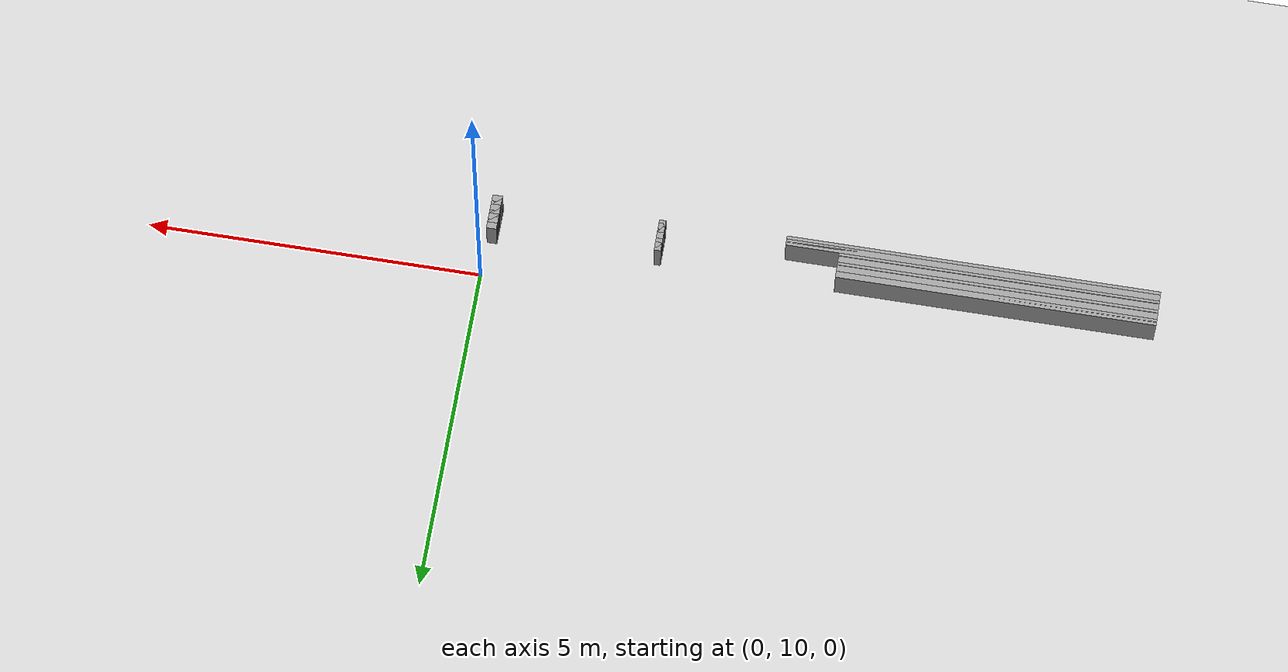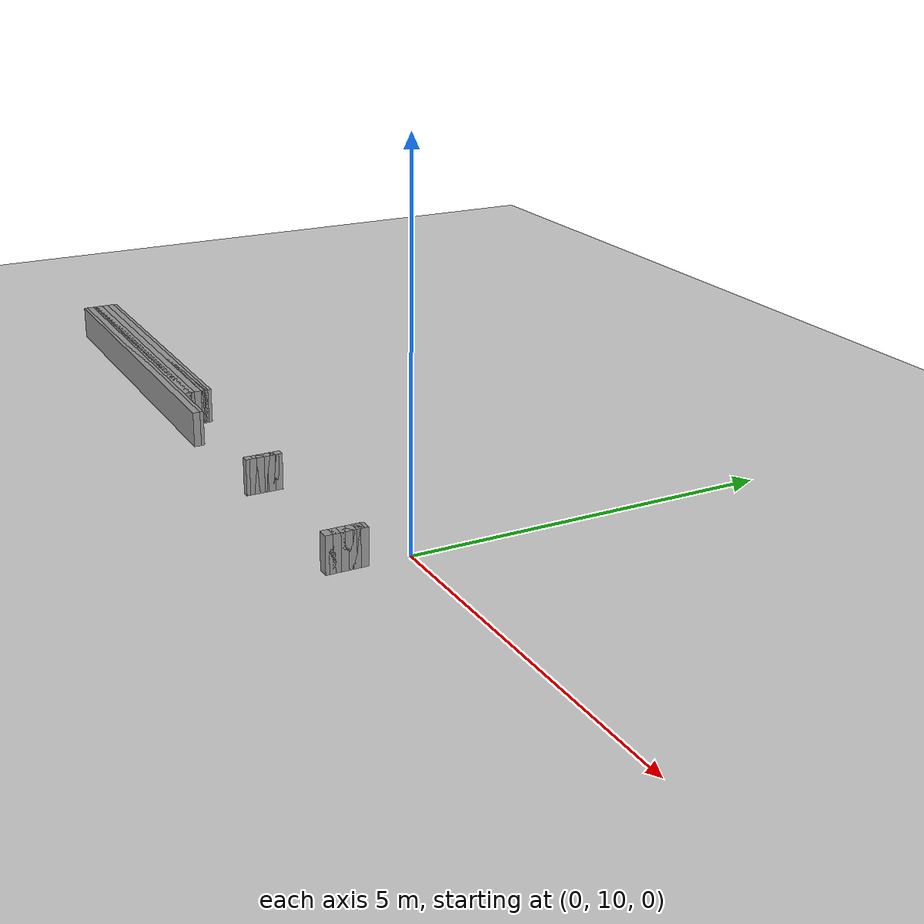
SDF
<sdf version="1.6">
 <world name="GridMap">
  <include><uri>model://sun</uri></include>
  <include><uri>model://ground_plane</uri></include>
  <model name="GridMap">
   <link name="Wall_(143.5,178.0)">
    <collision name="Wall_(143.5,178.0)_Collision">
     <geometry><box><size>5.550000000000001 0.1 0.5</size></box></geometry>
     <pose>-7.175000000000001 8.9 0.25 0 -0 0</pose>
    </collision>
    <inertial>
     <mass>0.5</mass>
     <pose>0 0.01 0 0 0 0</pose>
     <inertia><ixx>0.004</ixx><ixy>0.001</ixy><ixz>0</ixz><iyy>0.006</iyy><iyz>0</iyz><izz>0.007</izz></inertia>
    </inertial>
    <visual name="Wall_(143.5,178.0)_Visual">
     <geometry><box><size>5.550000000000001 0.1 0.5</size></box></geometry>
     <pose>-7.175000000000001 8.9 0.25 0 -0 0</pose>
     <material>
      <script><uri>file://media/materials/scripts/gazebo.material</uri><name>Gazebo/Grey</name></script>
      <ambient>1 1 1 1</ambient>
     </material>
     <meta><layer>0</layer></meta>
    </visual>
   </link>
   <link name="Wall_(1.5,179.0)">
    <collision name="Wall_(1.5,179.0)_Collision">
     <geometry><box><size>0.15000000000000002 0.1 0.5</size></box></geometry>
     <pose>-0.07500000000000001 8.950000000000001 0.25 0 -0 0</pose>
    </collision>
    <inertial>
     <mass>0.5</mass>
     <pose>0 0.01 0 0 0 0</pose>
     <inertia><ixx>0.004</ixx><ixy>0.001</ixy><ixz>0</ixz><iyy>0.006</iyy><iyz>0</iyz><izz>0.007</izz></inertia>
    </inertial>
    <visual name="Wall_(1.5,179.0)_Visual">
     <geometry><box><size>0.15000000000000002 0.1 0.5</size></box></geometry>
     <pose>-0.07500000000000001 8.950000000000001 0.25 0 -0 0</pose>
     <material>
      <script><uri>file://media/materials/scripts/gazebo.material</uri><name>Gazebo/Grey</name></script>
      <ambient>1 1 1 1</ambient>
     </material>
     <meta><layer>0</layer></meta>
    </visual>
   </link>
   <link name="Wall_(51.0,179.0)">
    <collision name="Wall_(51.0,179.0)_Collision">
     <geometry><box><size>0.1 0.1 0.5</size></box></geometry>
     <pose>-2.5500000000000003 8.950000000000001 0.25 0 -0 0</pose>
    </collision>
    <inertial>
     <mass>0.5</mass>
     <pose>0 0.01 0 0 0 0</pose>
     <inertia><ixx>0.004</ixx><ixy>0.001</ixy><ixz>0</ixz><iyy>0.006</iyy><iyz>0</iyz><izz>0.007</izz></inertia>
    </inertial>
    <visual name="Wall_(51.0,179.0)_Visual">
     <geometry><box><size>0.1 0.1 0.5</size></box></geometry>
     <pose>-2.5500000000000003 8.950000000000001 0.25 0 -0 0</pose>
     <material>
      <script><uri>file://media/materials/scripts/gazebo.material</uri><name>Gazebo/Grey</name></script>
      <ambient>1 1 1 1</ambient>
     </material>
     <meta><layer>0</layer></meta>
    </visual>
   </link>
   <link name="Wall_(143.5,179.0)">
    <collision name="Wall_(143.5,179.0)_Collision">
     <geometry><box><size>5.550000000000001 0.1 0.5</size></box></geometry>
     <pose>-7.175000000000001 8.950000000000001 0.25 0 -0 0</pose>
    </collision>
    <inertial>
     <mass>0.5</mass>
     <pose>0 0.01 0 0 0 0</pose>
     <inertia><ixx>0.004</ixx><ixy>0.001</ixy><ixz>0</ixz><iyy>0.006</iyy><iyz>0</iyz><izz>0.007</izz></inertia>
    </inertial>
    <visual name="Wall_(143.5,179.0)_Visual">
     <geometry><box><size>5.550000000000001 0.1 0.5</size></box></geometry>
     <pose>-7.175000000000001 8.950000000000001 0.25 0 -0 0</pose>
     <material>
      <script><uri>file://media/materials/scripts/gazebo.material</uri><name>Gazebo/Grey</name></script>
      <ambient>1 1 1 1</ambient>
     </material>
     <meta><layer>0</layer></meta>
    </visual>
   </link>
   <link name="Wall_(1.5,180.0)">
    <collision name="Wall_(1.5,180.0)_Collision">
     <geometry><box><size>0.15000000000000002 0.1 0.5</size></box></geometry>
     <pose>-0.07500000000000001 9.0 0.25 0 -0 0</pose>
    </collision>
    <inertial>
     <mass>0.5</mass>
     <pose>0 0.01 0 0 0 0</pose>
     <inertia><ixx>0.004</ixx><ixy>0.001</ixy><ixz>0</ixz><iyy>0.006</iyy><iyz>0</iyz><izz>0.007</izz></inertia>
    </inertial>
    <visual name="Wall_(1.5,180.0)_Visual">
     <geometry><box><size>0.15000000000000002 0.1 0.5</size></box></geometry>
     <pose>-0.07500000000000001 9.0 0.25 0 -0 0</pose>
     <material>
      <script><uri>file://media/materials/scripts/gazebo.material</uri><name>Gazebo/Grey</name></script>
      <ambient>1 1 1 1</ambient>
     </material>
     <meta><layer>0</layer></meta>
    </visual>
   </link>
   <link name="Wall_(51.0,180.0)">
    <collision name="Wall_(51.0,180.0)_Collision">
     <geometry><box><size>0.1 0.1 0.5</size></box></geometry>
     <pose>-2.5500000000000003 9.0 0.25 0 -0 0</pose>
    </collision>
    <inertial>
     <mass>0.5</mass>
     <pose>0 0.01 0 0 0 0</pose>
     <inertia><ixx>0.004</ixx><ixy>0.001</ixy><ixz>0</ixz><iyy>0.006</iyy><iyz>0</iyz><izz>0.007</izz></inertia>
    </inertial>
    <visual name="Wall_(51.0,180.0)_Visual">
     <geometry><box><size>0.1 0.1 0.5</size></box></geometry>
     <pose>-2.5500000000000003 9.0 0.25 0 -0 0</pose>
     <material>
      <script><uri>file://media/materials/scripts/gazebo.material</uri><name>Gazebo/Grey</name></script>
      <ambient>1 1 1 1</ambient>
     </material>
     <meta><layer>0</layer></meta>
    </visual>
   </link>
   <link name="Wall_(151.5,180.0)">
    <collision name="Wall_(151.5,180.0)_Collision">
     <geometry><box><size>4.75 0.1 0.5</size></box></geometry>
     <pose>-7.575 9.0 0.25 0 -0 0</pose>
    </collision>
    <inertial>
     <mass>0.5</mass>
     <pose>0 0.01 0 0 0 0</pose>
     <inertia><ixx>0.004</ixx><ixy>0.001</ixy><ixz>0</ixz><iyy>0.006</iyy><iyz>0</iyz><izz>0.007</izz></inertia>
    </inertial>
    <visual name="Wall_(151.5,180.0)_Visual">
     <geometry><box><size>4.75 0.1 0.5</size></box></geometry>
     <pose>-7.575 9.0 0.25 0 -0 0</pose>
     <material>
      <script><uri>file://media/materials/scripts/gazebo.material</uri><name>Gazebo/Grey</name></script>
      <ambient>1 1 1 1</ambient>
     </material>
     <meta><layer>0</layer></meta>
    </visual>
   </link>
   <link name="Wall_(1.5,181.0)">
    <collision name="Wall_(1.5,181.0)_Collision">
     <geometry><box><size>0.15000000000000002 0.1 0.5</size></box></geometry>
     <pose>-0.07500000000000001 9.05 0.25 0 -0 0</pose>
    </collision>
    <inertial>
     <mass>0.5</mass>
     <pose>0 0.01 0 0 0 0</pose>
     <inertia><ixx>0.004</ixx><ixy>0.001</ixy><ixz>0</ixz><iyy>0.006</iyy><iyz>0</iyz><izz>0.007</izz></inertia>
    </inertial>
    <visual name="Wall_(1.5,181.0)_Visual">
     <geometry><box><size>0.15000000000000002 0.1 0.5</size></box></geometry>
     <pose>-0.07500000000000001 9.05 0.25 0 -0 0</pose>
     <material>
      <script><uri>file://media/materials/scripts/gazebo.material</uri><name>Gazebo/Grey</name></script>
      <ambient>1 1 1 1</ambient>
     </material>
     <meta><layer>0</layer></meta>
    </visual>
   </link>
   <link name="Wall_(51.0,181.0)">
    <collision name="Wall_(51.0,181.0)_Collision">
     <geometry><box><size>0.1 0.1 0.5</size></box></geometry>
     <pose>-2.5500000000000003 9.05 0.25 0 -0 0</pose>
    </collision>
    <inertial>
     <mass>0.5</mass>
     <pose>0 0.01 0 0 0 0</pose>
     <inertia><ixx>0.004</ixx><ixy>0.001</ixy><ixz>0</ixz><iyy>0.006</iyy><iyz>0</iyz><izz>0.007</izz></inertia>
    </inertial>
    <visual name="Wall_(51.0,181.0)_Visual">
     <geometry><box><size>0.1 0.1 0.5</size></box></geometry>
     <pose>-2.5500000000000003 9.05 0.25 0 -0 0</pose>
     <material>
      <script><uri>file://media/materials/scripts/gazebo.material</uri><name>Gazebo/Grey</name></script>
      <ambient>1 1 1 1</ambient>
     </material>
     <meta><layer>0</layer></meta>
    </visual>
   </link>
   <link name="Wall_(151.5,181.0)">
    <collision name="Wall_(151.5,181.0)_Collision">
     <geometry><box><size>4.75 0.1 0.5</size></box></geometry>
     <pose>-7.575 9.05 0.25 0 -0 0</pose>
    </collision>
    <inertial>
     <mass>0.5</mass>
     <pose>0 0.01 0 0 0 0</pose>
     <inertia><ixx>0.004</ixx><ixy>0.001</ixy><ixz>0</ixz><iyy>0.006</iyy><iyz>0</iyz><izz>0.007</izz></inertia>
    </inertial>
    <visual name="Wall_(151.5,181.0)_Visual">
     <geometry><box><size>4.75 0.1 0.5</size></box></geometry>
     <pose>-7.575 9.05 0.25 0 -0 0</pose>
     <material>
      <script><uri>file://media/materials/scripts/gazebo.material</uri><name>Gazebo/Grey</name></script>
      <ambient>1 1 1 1</ambient>
     </material>
     <meta><layer>0</layer></meta>
    </visual>
   </link>
   <link name="Wall_(1.5,182.0)">
    <collision name="Wall_(1.5,182.0)_Collision">
     <geometry><box><size>0.15000000000000002 0.1 0.5</size></box></geometry>
     <pose>-0.07500000000000001 9.1 0.25 0 -0 0</pose>
    </collision>
    <inertial>
     <mass>0.5</mass>
     <pose>0 0.01 0 0 0 0</pose>
     <inertia><ixx>0.004</ixx><ixy>0.001</ixy><ixz>0</ixz><iyy>0.006</iyy><iyz>0</iyz><izz>0.007</izz></inertia>
    </inertial>
    <visual name="Wall_(1.5,182.0)_Visual">
     <geometry><box><size>0.15000000000000002 0.1 0.5</size></box></geometry>
     <pose>-0.07500000000000001 9.1 0.25 0 -0 0</pose>
     <material>
      <script><uri>file://media/materials/scripts/gazebo.material</uri><name>Gazebo/Grey</name></script>
      <ambient>1 1 1 1</ambient>
     </material>
     <meta><layer>0</layer></meta>
    </visual>
   </link>
   <link name="Wall_(51.0,182.0)">
    <collision name="Wall_(51.0,182.0)_Collision">
     <geometry><box><size>0.1 0.1 0.5</size></box></geometry>
     <pose>-2.5500000000000003 9.1 0.25 0 -0 0</pose>
    </collision>
    <inertial>
     <mass>0.5</mass>
     <pose>0 0.01 0 0 0 0</pose>
     <inertia><ixx>0.004</ixx><ixy>0.001</ixy><ixz>0</ixz><iyy>0.006</iyy><iyz>0</iyz><izz>0.007</izz></inertia>
    </inertial>
    <visual name="Wall_(51.0,182.0)_Visual">
     <geometry><box><size>0.1 0.1 0.5</size></box></geometry>
     <pose>-2.5500000000000003 9.1 0.25 0 -0 0</pose>
     <material>
      <script><uri>file://media/materials/scripts/gazebo.material</uri><name>Gazebo/Grey</name></script>
      <ambient>1 1 1 1</ambient>
     </material>
     <meta><layer>0</layer></meta>
    </visual>
   </link>
   <link name="Wall_(151.5,182.0)">
    <collision name="Wall_(151.5,182.0)_Collision">
     <geometry><box><size>4.75 0.1 0.5</size></box></geometry>
     <pose>-7.575 9.1 0.25 0 -0 0</pose>
    </collision>
    <inertial>
     <mass>0.5</mass>
     <pose>0 0.01 0 0 0 0</pose>
     <inertia><ixx>0.004</ixx><ixy>0.001</ixy><ixz>0</ixz><iyy>0.006</iyy><iyz>0</iyz><izz>0.007</izz></inertia>
    </inertial>
    <visual name="Wall_(151.5,182.0)_Visual">
     <geometry><box><size>4.75 0.1 0.5</size></box></geometry>
     <pose>-7.575 9.1 0.25 0 -0 0</pose>
     <material>
      <script><uri>file://media/materials/scripts/gazebo.material</uri><name>Gazebo/Grey</name></script>
      <ambient>1 1 1 1</ambient>
     </material>
     <meta><layer>0</layer></meta>
    </visual>
   </link>
   <link name="Wall_(1.5,183.0)">
    <collision name="Wall_(1.5,183.0)_Collision">
     <geometry><box><size>0.15000000000000002 0.1 0.5</size></box></geometry>
     <pose>-0.07500000000000001 9.15 0.25 0 -0 0</pose>
    </collision>
    <inertial>
     <mass>0.5</mass>
     <pose>0 0.01 0 0 0 0</pose>
     <inertia><ixx>0.004</ixx><ixy>0.001</ixy><ixz>0</ixz><iyy>0.006</iyy><iyz>0</iyz><izz>0.007</izz></inertia>
    </inertial>
    <visual name="Wall_(1.5,183.0)_Visual">
     <geometry><box><size>0.15000000000000002 0.1 0.5</size></box></geometry>
     <pose>-0.07500000000000001 9.15 0.25 0 -0 0</pose>
     <material>
      <script><uri>file://media/materials/scripts/gazebo.material</uri><name>Gazebo/Grey</name></script>
      <ambient>1 1 1 1</ambient>
     </material>
     <meta><layer>0</layer></meta>
    </visual>
   </link>
   <link name="Wall_(51.0,183.0)">
    <collision name="Wall_(51.0,183.0)_Collision">
     <geometry><box><size>0.1 0.1 0.5</size></box></geometry>
     <pose>-2.5500000000000003 9.15 0.25 0 -0 0</pose>
    </collision>
    <inertial>
     <mass>0.5</mass>
     <pose>0 0.01 0 0 0 0</pose>
     <inertia><ixx>0.004</ixx><ixy>0.001</ixy><ixz>0</ixz><iyy>0.006</iyy><iyz>0</iyz><izz>0.007</izz></inertia>
    </inertial>
    <visual name="Wall_(51.0,183.0)_Visual">
     <geometry><box><size>0.1 0.1 0.5</size></box></geometry>
     <pose>-2.5500000000000003 9.15 0.25 0 -0 0</pose>
     <material>
      <script><uri>file://media/materials/scripts/gazebo.material</uri><name>Gazebo/Grey</name></script>
      <ambient>1 1 1 1</ambient>
     </material>
     <meta><layer>0</layer></meta>
    </visual>
   </link>
   <link name="Wall_(151.5,183.0)">
    <collision name="Wall_(151.5,183.0)_Collision">
     <geometry><box><size>4.75 0.1 0.5</size></box></geometry>
     <pose>-7.575 9.15 0.25 0 -0 0</pose>
    </collision>
    <inertial>
     <mass>0.5</mass>
     <pose>0 0.01 0 0 0 0</pose>
     <inertia><ixx>0.004</ixx><ixy>0.001</ixy><ixz>0</ixz><iyy>0.006</iyy><iyz>0</iyz><izz>0.007</izz></inertia>
    </inertial>
    <visual name="Wall_(151.5,183.0)_Visual">
     <geometry><box><size>4.75 0.1 0.5</size></box></geometry>
     <pose>-7.575 9.15 0.25 0 -0 0</pose>
     <material>
      <script><uri>file://media/materials/scripts/gazebo.material</uri><name>Gazebo/Grey</name></script>
      <ambient>1 1 1 1</ambient>
     </material>
     <meta><layer>0</layer></meta>
    </visual>
   </link>
   <link name="Wall_(1.5,184.0)">
    <collision name="Wall_(1.5,184.0)_Collision">
     <geometry><box><size>0.15000000000000002 0.1 0.5</size></box></geometry>
     <pose>-0.07500000000000001 9.200000000000001 0.25 0 -0 0</pose>
    </collision>
    <inertial>
     <mass>0.5</mass>
     <pose>0 0.01 0 0 0 0</pose>
     <inertia><ixx>0.004</ixx><ixy>0.001</ixy><ixz>0</ixz><iyy>0.006</iyy><iyz>0</iyz><izz>0.007</izz></inertia>
    </inertial>
    <visual name="Wall_(1.5,184.0)_Visual">
     <geometry><box><size>0.15000000000000002 0.1 0.5</size></box></geometry>
     <pose>-0.07500000000000001 9.200000000000001 0.25 0 -0 0</pose>
     <material>
      <script><uri>file://media/materials/scripts/gazebo.material</uri><name>Gazebo/Grey</name></script>
      <ambient>1 1 1 1</ambient>
     </material>
     <meta><layer>0</layer></meta>
    </visual>
   </link>
   <link name="Wall_(51.0,184.0)">
    <collision name="Wall_(51.0,184.0)_Collision">
     <geometry><box><size>0.1 0.1 0.5</size></box></geometry>
     <pose>-2.5500000000000003 9.200000000000001 0.25 0 -0 0</pose>
    </collision>
    <inertial>
     <mass>0.5</mass>
     <pose>0 0.01 0 0 0 0</pose>
     <inertia><ixx>0.004</ixx><ixy>0.001</ixy><ixz>0</ixz><iyy>0.006</iyy><iyz>0</iyz><izz>0.007</izz></inertia>
    </inertial>
    <visual name="Wall_(51.0,184.0)_Visual">
     <geometry><box><size>0.1 0.1 0.5</size></box></geometry>
     <pose>-2.5500000000000003 9.200000000000001 0.25 0 -0 0</pose>
     <material>
      <script><uri>file://media/materials/scripts/gazebo.material</uri><name>Gazebo/Grey</name></script>
      <ambient>1 1 1 1</ambient>
     </material>
     <meta><layer>0</layer></meta>
    </visual>
   </link>
   <link name="Wall_(151.5,184.0)">
    <collision name="Wall_(151.5,184.0)_Collision">
     <geometry><box><size>4.75 0.1 0.5</size></box></geometry>
     <pose>-7.575 9.200000000000001 0.25 0 -0 0</pose>
    </collision>
    <inertial>
     <mass>0.5</mass>
     <pose>0 0.01 0 0 0 0</pose>
     <inertia><ixx>0.004</ixx><ixy>0.001</ixy><ixz>0</ixz><iyy>0.006</iyy><iyz>0</iyz><izz>0.007</izz></inertia>
    </inertial>
    <visual name="Wall_(151.5,184.0)_Visual">
     <geometry><box><size>4.75 0.1 0.5</size></box></geometry>
     <pose>-7.575 9.200000000000001 0.25 0 -0 0</pose>
     <material>
      <script><uri>file://media/materials/scripts/gazebo.material</uri><name>Gazebo/Grey</name></script>
      <ambient>1 1 1 1</ambient>
     </material>
     <meta><layer>0</layer></meta>
    </visual>
   </link>
   <link name="Wall_(1.5,185.0)">
    <collision name="Wall_(1.5,185.0)_Collision">
     <geometry><box><size>0.15000000000000002 0.1 0.5</size></box></geometry>
     <pose>-0.07500000000000001 9.25 0.25 0 -0 0</pose>
    </collision>
    <inertial>
     <mass>0.5</mass>
     <pose>0 0.01 0 0 0 0</pose>
     <inertia><ixx>0.004</ixx><ixy>0.001</ixy><ixz>0</ixz><iyy>0.006</iyy><iyz>0</iyz><izz>0.007</izz></inertia>
    </inertial>
    <visual name="Wall_(1.5,185.0)_Visual">
     <geometry><box><size>0.15000000000000002 0.1 0.5</size></box></geometry>
     <pose>-0.07500000000000001 9.25 0.25 0 -0 0</pose>
     <material>
      <script><uri>file://media/materials/scripts/gazebo.material</uri><name>Gazebo/Grey</name></script>
      <ambient>1 1 1 1</ambient>
     </material>
     <meta><layer>0</layer></meta>
    </visual>
   </link>
   <link name="Wall_(51.0,185.0)">
    <collision name="Wall_(51.0,185.0)_Collision">
     <geometry><box><size>0.1 0.1 0.5</size></box></geometry>
     <pose>-2.5500000000000003 9.25 0.25 0 -0 0</pose>
    </collision>
    <inertial>
     <mass>0.5</mass>
     <pose>0 0.01 0 0 0 0</pose>
     <inertia><ixx>0.004</ixx><ixy>0.001</ixy><ixz>0</ixz><iyy>0.006</iyy><iyz>0</iyz><izz>0.007</izz></inertia>
    </inertial>
    <visual name="Wall_(51.0,185.0)_Visual">
     <geometry><box><size>0.1 0.1 0.5</size></box></geometry>
     <pose>-2.5500000000000003 9.25 0.25 0 -0 0</pose>
     <material>
      <script><uri>file://media/materials/scripts/gazebo.material</uri><name>Gazebo/Grey</name></script>
      <ambient>1 1 1 1</ambient>
     </material>
     <meta><layer>0</layer></meta>
    </visual>
   </link>
   <link name="Wall_(151.5,185.0)">
    <collision name="Wall_(151.5,185.0)_Collision">
     <geometry><box><size>4.75 0.1 0.5</size></box></geometry>
     <pose>-7.575 9.25 0.25 0 -0 0</pose>
    </collision>
    <inertial>
     <mass>0.5</mass>
     <pose>0 0.01 0 0 0 0</pose>
     <inertia><ixx>0.004</ixx><ixy>0.001</ixy><ixz>0</ixz><iyy>0.006</iyy><iyz>0</iyz><izz>0.007</izz></inertia>
    </inertial>
    <visual name="Wall_(151.5,185.0)_Visual">
     <geometry><box><size>4.75 0.1 0.5</size></box></geometry>
     <pose>-7.575 9.25 0.25 0 -0 0</pose>
     <material>
      <script><uri>file://media/materials/scripts/gazebo.material</uri><name>Gazebo/Grey</name></script>
      <ambient>1 1 1 1</ambient>
     </material>
     <meta><layer>0</layer></meta>
    </visual>
   </link>
   <link name="Wall_(1.5,186.0)">
    <collision name="Wall_(1.5,186.0)_Collision">
     <geometry><box><size>0.15000000000000002 0.1 0.5</size></box></geometry>
     <pose>-0.07500000000000001 9.3 0.25 0 -0 0</pose>
    </collision>
    <inertial>
     <mass>0.5</mass>
     <pose>0 0.01 0 0 0 0</pose>
     <inertia><ixx>0.004</ixx><ixy>0.001</ixy><ixz>0</ixz><iyy>0.006</iyy><iyz>0</iyz><izz>0.007</izz></inertia>
    </inertial>
    <visual name="Wall_(1.5,186.0)_Visual">
     <geometry><box><size>0.15000000000000002 0.1 0.5</size></box></geometry>
     <pose>-0.07500000000000001 9.3 0.25 0 -0 0</pose>
     <material>
      <script><uri>file://media/materials/scripts/gazebo.material</uri><name>Gazebo/Grey</name></script>
      <ambient>1 1 1 1</ambient>
     </material>
     <meta><layer>0</layer></meta>
    </visual>
   </link>
   <link name="Wall_(51.0,186.0)">
    <collision name="Wall_(51.0,186.0)_Collision">
     <geometry><box><size>0.1 0.1 0.5</size></box></geometry>
     <pose>-2.5500000000000003 9.3 0.25 0 -0 0</pose>
    </collision>
    <inertial>
     <mass>0.5</mass>
     <pose>0 0.01 0 0 0 0</pose>
     <inertia><ixx>0.004</ixx><ixy>0.001</ixy><ixz>0</ixz><iyy>0.006</iyy><iyz>0</iyz><izz>0.007</izz></inertia>
    </inertial>
    <visual name="Wall_(51.0,186.0)_Visual">
     <geometry><box><size>0.1 0.1 0.5</size></box></geometry>
     <pose>-2.5500000000000003 9.3 0.25 0 -0 0</pose>
     <material>
      <script><uri>file://media/materials/scripts/gazebo.material</uri><name>Gazebo/Grey</name></script>
      <ambient>1 1 1 1</ambient>
     </material>
     <meta><layer>0</layer></meta>
    </visual>
   </link>
   <link name="Wall_(151.5,186.0)">
    <collision name="Wall_(151.5,186.0)_Collision">
     <geometry><box><size>4.75 0.1 0.5</size></box></geometry>
     <pose>-7.575 9.3 0.25 0 -0 0</pose>
    </collision>
    <inertial>
     <mass>0.5</mass>
     <pose>0 0.01 0 0 0 0</pose>
     <inertia><ixx>0.004</ixx><ixy>0.001</ixy><ixz>0</ixz><iyy>0.006</iyy><iyz>0</iyz><izz>0.007</izz></inertia>
    </inertial>
    <visual name="Wall_(151.5,186.0)_Visual">
     <geometry><box><size>4.75 0.1 0.5</size></box></geometry>
     <pose>-7.575 9.3 0.25 0 -0 0</pose>
     <material>
      <script><uri>file://media/materials/scripts/gazebo.material</uri><name>Gazebo/Grey</name></script>
      <ambient>1 1 1 1</ambient>
     </material>
     <meta><layer>0</layer></meta>
    </visual>
   </link>
   <link name="Wall_(1.5,187.0)">
    <collision name="Wall_(1.5,187.0)_Collision">
     <geometry><box><size>0.15000000000000002 0.1 0.5</size></box></geometry>
     <pose>-0.07500000000000001 9.35 0.25 0 -0 0</pose>
    </collision>
    <inertial>
     <mass>0.5</mass>
     <pose>0 0.01 0 0 0 0</pose>
     <inertia><ixx>0.004</ixx><ixy>0.001</ixy><ixz>0</ixz><iyy>0.006</iyy><iyz>0</iyz><izz>0.007</izz></inertia>
    </inertial>
    <visual name="Wall_(1.5,187.0)_Visual">
     <geometry><box><size>0.15000000000000002 0.1 0.5</size></box></geometry>
     <pose>-0.07500000000000001 9.35 0.25 0 -0 0</pose>
     <material>
      <script><uri>file://media/materials/scripts/gazebo.material</uri><name>Gazebo/Grey</name></script>
      <ambient>1 1 1 1</ambient>
     </material>
     <meta><layer>0</layer></meta>
    </visual>
   </link>
   <link name="Wall_(51.0,187.0)">
    <collision name="Wall_(51.0,187.0)_Collision">
     <geometry><box><size>0.1 0.1 0.5</size></box></geometry>
     <pose>-2.5500000000000003 9.35 0.25 0 -0 0</pose>
    </collision>
    <inertial>
     <mass>0.5</mass>
     <pose>0 0.01 0 0 0 0</pose>
     <inertia><ixx>0.004</ixx><ixy>0.001</ixy><ixz>0</ixz><iyy>0.006</iyy><iyz>0</iyz><izz>0.007</izz></inertia>
    </inertial>
    <visual name="Wall_(51.0,187.0)_Visual">
     <geometry><box><size>0.1 0.1 0.5</size></box></geometry>
     <pose>-2.5500000000000003 9.35 0.25 0 -0 0</pose>
     <material>
      <script><uri>file://media/materials/scripts/gazebo.material</uri><name>Gazebo/Grey</name></script>
      <ambient>1 1 1 1</ambient>
     </material>
     <meta><layer>0</layer></meta>
    </visual>
   </link>
   <link name="Wall_(151.5,187.0)">
    <collision name="Wall_(151.5,187.0)_Collision">
     <geometry><box><size>4.75 0.1 0.5</size></box></geometry>
     <pose>-7.575 9.35 0.25 0 -0 0</pose>
    </collision>
    <inertial>
     <mass>0.5</mass>
     <pose>0 0.01 0 0 0 0</pose>
     <inertia><ixx>0.004</ixx><ixy>0.001</ixy><ixz>0</ixz><iyy>0.006</iyy><iyz>0</iyz><izz>0.007</izz></inertia>
    </inertial>
    <visual name="Wall_(151.5,187.0)_Visual">
     <geometry><box><size>4.75 0.1 0.5</size></box></geometry>
     <pose>-7.575 9.35 0.25 0 -0 0</pose>
     <material>
      <script><uri>file://media/materials/scripts/gazebo.material</uri><name>Gazebo/Grey</name></script>
      <ambient>1 1 1 1</ambient>
     </material>
     <meta><layer>0</layer></meta>
    </visual>
   </link>
   <link name="Wall_(1.5,188.0)">
    <collision name="Wall_(1.5,188.0)_Collision">
     <geometry><box><size>0.15000000000000002 0.1 0.5</size></box></geometry>
     <pose>-0.07500000000000001 9.4 0.25 0 -0 0</pose>
    </collision>
    <inertial>
     <mass>0.5</mass>
     <pose>0 0.01 0 0 0 0</pose>
     <inertia><ixx>0.004</ixx><ixy>0.001</ixy><ixz>0</ixz><iyy>0.006</iyy><iyz>0</iyz><izz>0.007</izz></inertia>
    </inertial>
    <visual name="Wall_(1.5,188.0)_Visual">
     <geometry><box><size>0.15000000000000002 0.1 0.5</size></box></geometry>
     <pose>-0.07500000000000001 9.4 0.25 0 -0 0</pose>
     <material>
      <script><uri>file://media/materials/scripts/gazebo.material</uri><name>Gazebo/Grey</name></script>
      <ambient>1 1 1 1</ambient>
     </material>
     <meta><layer>0</layer></meta>
    </visual>
   </link>
   <static>1</static>
  </model>
 </world>
</sdf>
